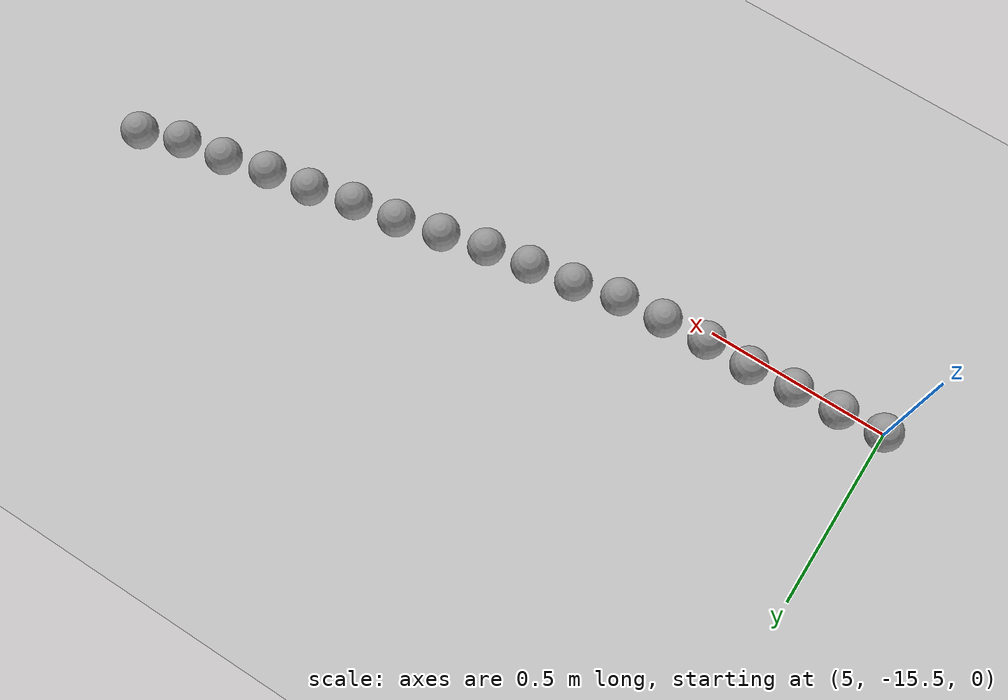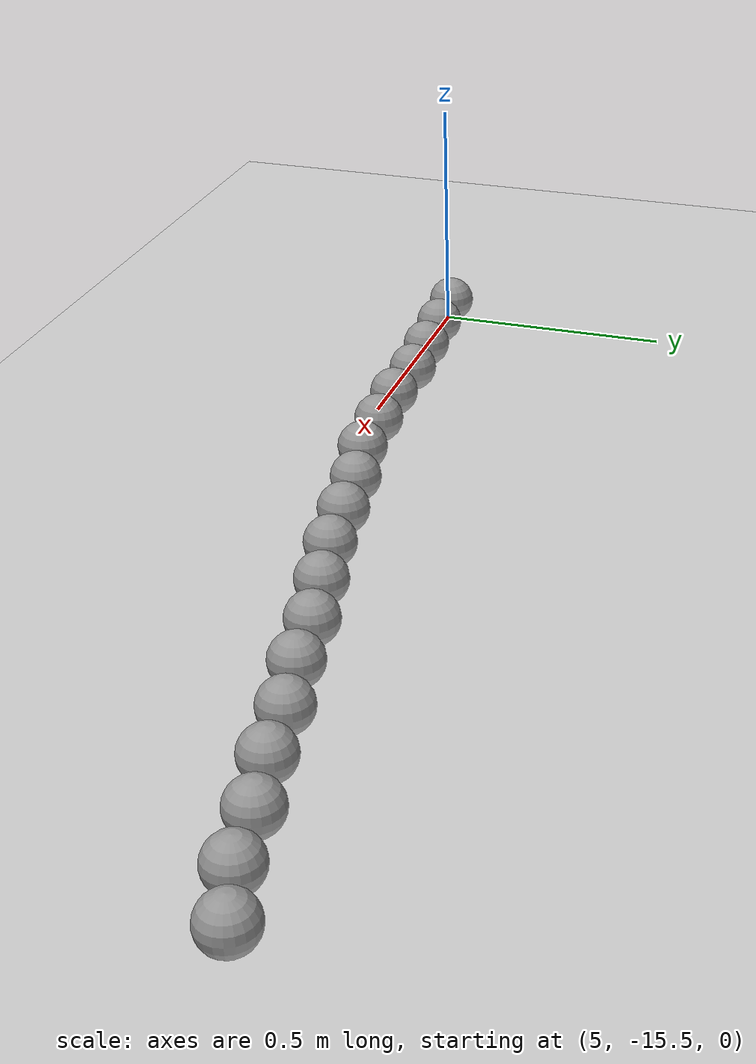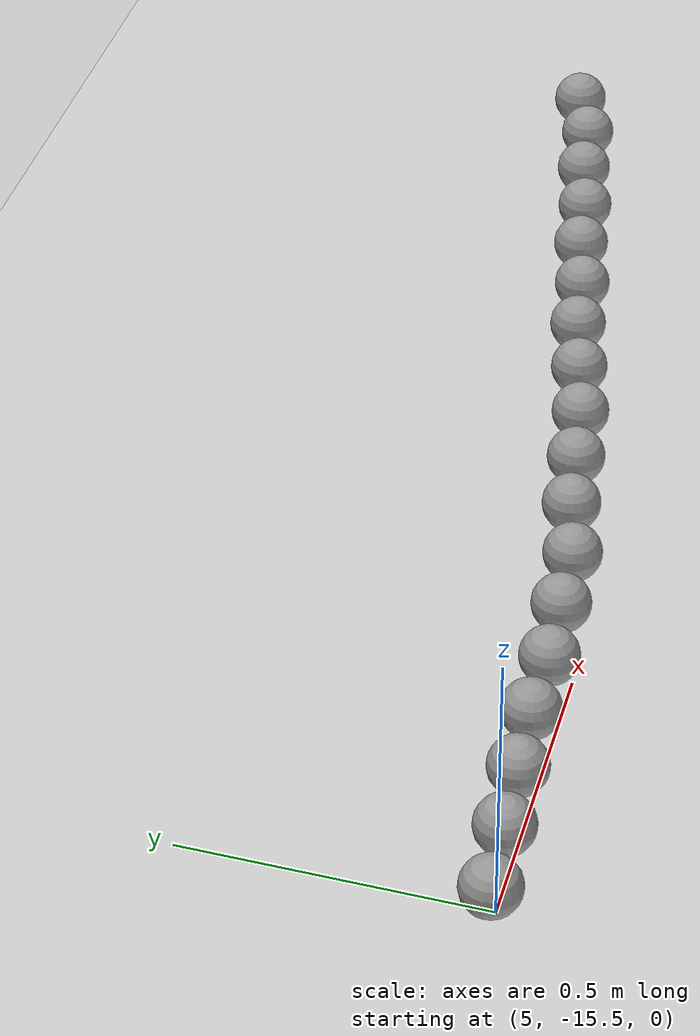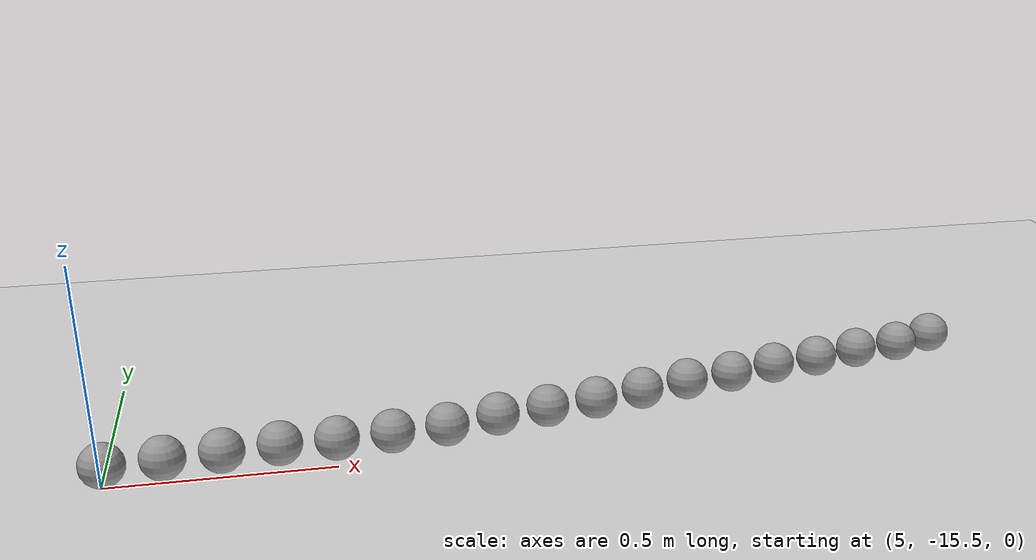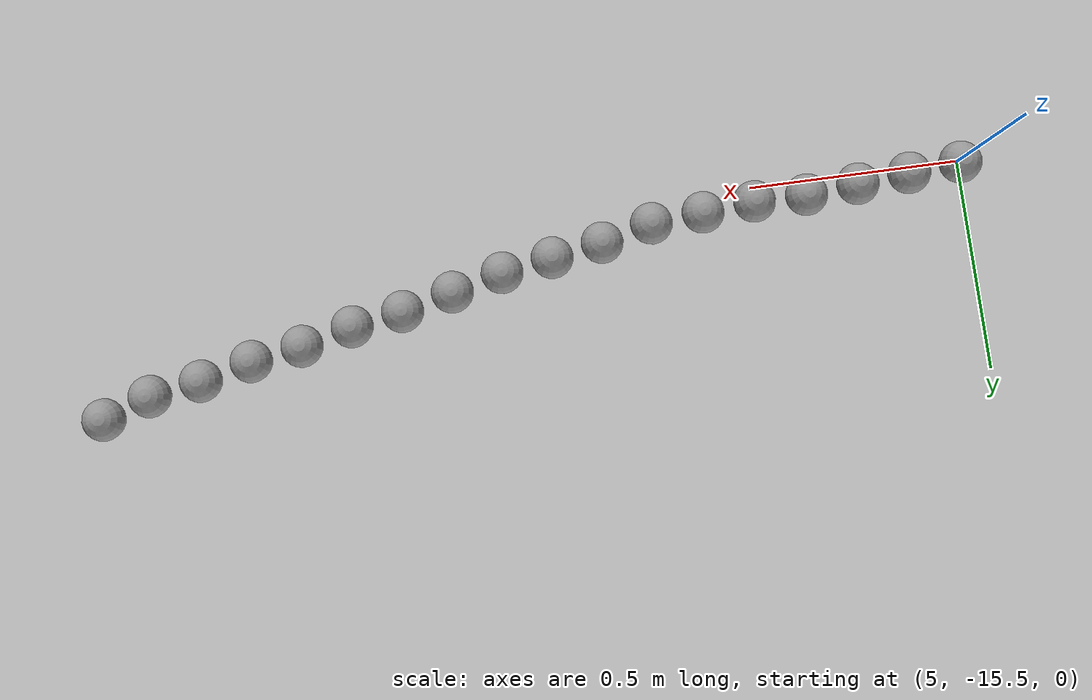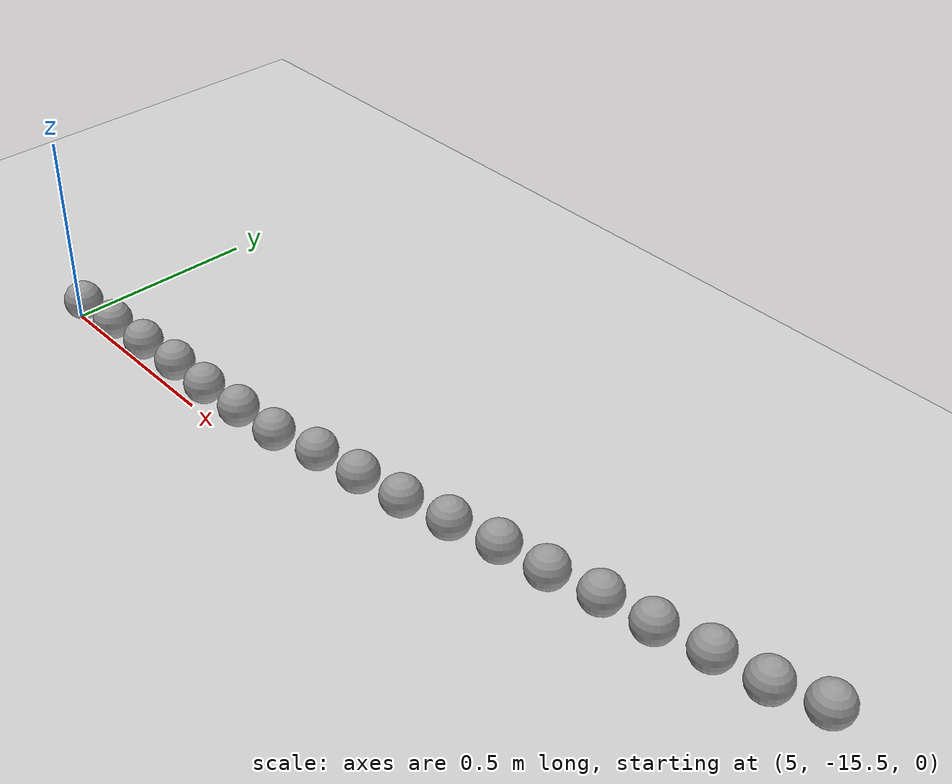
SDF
<sdf version="1.6">
 <world name="default">
  <model name="ground_plane">
   <static>1</static>
   <link name="link">
    <collision name="collision">
     <geometry><plane><normal>0 0 1</normal><size>100 100</size></plane></geometry>
     <surface><friction><ode><mu>100</mu><mu2>50</mu2></ode></friction></surface>
    </collision>
    <visual name="visual">
     <cast_shadows>0</cast_shadows>
     <geometry><plane><normal>0 0 1</normal><size>100 100</size></plane></geometry>
     <material>
      <script><uri>file://media/materials/scripts/gazebo.material</uri><name>Gazebo/Grey</name></script>
     </material>
    </visual>
   </link>
  </model>
  <model name="unit_sphere_0_539">
   <pose>7.071000 -15.150000 0.050000 0 -0 0</pose>
   <link name="link">
    <inertial>
     <mass>1</mass>
     <inertia><ixx>0.1</ixx><ixy>0</ixy><ixz>0</ixz><iyy>0.1</iyy><iyz>0</iyz><izz>0.1</izz></inertia>
    </inertial>
    <collision name="collision"><geometry><sphere><radius>0.050000</radius></sphere></geometry></collision>
    <visual name="visual">
     <geometry><sphere><radius>0.050000</radius></sphere></geometry>
     <material>
      <script><name>Gazebo/Grey</name><uri>file://media/materials/scripts/gazebo.material</uri></script>
     </material>
    </visual>
   </link>
  </model>
  <model name="unit_sphere_0_540">
   <pose>6.960000 -15.190000 0.050000 0 -0 0</pose>
   <link name="link">
    <inertial>
     <mass>1</mass>
     <inertia><ixx>0.1</ixx><ixy>0</ixy><ixz>0</ixz><iyy>0.1</iyy><iyz>0</iyz><izz>0.1</izz></inertia>
    </inertial>
    <collision name="collision"><geometry><sphere><radius>0.050000</radius></sphere></geometry></collision>
    <visual name="visual">
     <geometry><sphere><radius>0.050000</radius></sphere></geometry>
     <material>
      <script><name>Gazebo/Grey</name><uri>file://media/materials/scripts/gazebo.material</uri></script>
     </material>
    </visual>
   </link>
  </model>
  <model name="unit_sphere_0_541">
   <pose>6.839000 -15.210000 0.050000 0 -0 0</pose>
   <link name="link">
    <inertial>
     <mass>1</mass>
     <inertia><ixx>0.1</ixx><ixy>0</ixy><ixz>0</ixz><iyy>0.1</iyy><iyz>0</iyz><izz>0.1</izz></inertia>
    </inertial>
    <collision name="collision"><geometry><sphere><radius>0.050000</radius></sphere></geometry></collision>
    <visual name="visual">
     <geometry><sphere><radius>0.050000</radius></sphere></geometry>
     <material>
      <script><name>Gazebo/Grey</name><uri>file://media/materials/scripts/gazebo.material</uri></script>
     </material>
    </visual>
   </link>
  </model>
  <model name="unit_sphere_0_542">
   <pose>6.718000 -15.240000 0.050000 0 -0 0</pose>
   <link name="link">
    <inertial>
     <mass>1</mass>
     <inertia><ixx>0.1</ixx><ixy>0</ixy><ixz>0</ixz><iyy>0.1</iyy><iyz>0</iyz><izz>0.1</izz></inertia>
    </inertial>
    <collision name="collision"><geometry><sphere><radius>0.050000</radius></sphere></geometry></collision>
    <visual name="visual">
     <geometry><sphere><radius>0.050000</radius></sphere></geometry>
     <material>
      <script><name>Gazebo/Grey</name><uri>file://media/materials/scripts/gazebo.material</uri></script>
     </material>
    </visual>
   </link>
  </model>
  <model name="unit_sphere_0_543">
   <pose>6.597000 -15.260000 0.050000 0 -0 0</pose>
   <link name="link">
    <inertial>
     <mass>1</mass>
     <inertia><ixx>0.1</ixx><ixy>0</ixy><ixz>0</ixz><iyy>0.1</iyy><iyz>0</iyz><izz>0.1</izz></inertia>
    </inertial>
    <collision name="collision"><geometry><sphere><radius>0.050000</radius></sphere></geometry></collision>
    <visual name="visual">
     <geometry><sphere><radius>0.050000</radius></sphere></geometry>
     <material>
      <script><name>Gazebo/Grey</name><uri>file://media/materials/scripts/gazebo.material</uri></script>
     </material>
    </visual>
   </link>
  </model>
  <model name="unit_sphere_0_544">
   <pose>6.476000 -15.290000 0.050000 0 -0 0</pose>
   <link name="link">
    <inertial>
     <mass>1</mass>
     <inertia><ixx>0.1</ixx><ixy>0</ixy><ixz>0</ixz><iyy>0.1</iyy><iyz>0</iyz><izz>0.1</izz></inertia>
    </inertial>
    <collision name="collision"><geometry><sphere><radius>0.050000</radius></sphere></geometry></collision>
    <visual name="visual">
     <geometry><sphere><radius>0.050000</radius></sphere></geometry>
     <material>
      <script><name>Gazebo/Grey</name><uri>file://media/materials/scripts/gazebo.material</uri></script>
     </material>
    </visual>
   </link>
  </model>
  <model name="unit_sphere_0_545">
   <pose>6.355000 -15.310000 0.050000 0 -0 0</pose>
   <link name="link">
    <inertial>
     <mass>1</mass>
     <inertia><ixx>0.1</ixx><ixy>0</ixy><ixz>0</ixz><iyy>0.1</iyy><iyz>0</iyz><izz>0.1</izz></inertia>
    </inertial>
    <collision name="collision"><geometry><sphere><radius>0.050000</radius></sphere></geometry></collision>
    <visual name="visual">
     <geometry><sphere><radius>0.050000</radius></sphere></geometry>
     <material>
      <script><name>Gazebo/Grey</name><uri>file://media/materials/scripts/gazebo.material</uri></script>
     </material>
    </visual>
   </link>
  </model>
  <model name="unit_sphere_0_546">
   <pose>6.234000 -15.340000 0.050000 0 -0 0</pose>
   <link name="link">
    <inertial>
     <mass>1</mass>
     <inertia><ixx>0.1</ixx><ixy>0</ixy><ixz>0</ixz><iyy>0.1</iyy><iyz>0</iyz><izz>0.1</izz></inertia>
    </inertial>
    <collision name="collision"><geometry><sphere><radius>0.050000</radius></sphere></geometry></collision>
    <visual name="visual">
     <geometry><sphere><radius>0.050000</radius></sphere></geometry>
     <material>
      <script><name>Gazebo/Grey</name><uri>file://media/materials/scripts/gazebo.material</uri></script>
     </material>
    </visual>
   </link>
  </model>
  <model name="unit_sphere_0_547">
   <pose>6.113000 -15.370000 0.050000 0 -0 0</pose>
   <link name="link">
    <inertial>
     <mass>1</mass>
     <inertia><ixx>0.1</ixx><ixy>0</ixy><ixz>0</ixz><iyy>0.1</iyy><iyz>0</iyz><izz>0.1</izz></inertia>
    </inertial>
    <collision name="collision"><geometry><sphere><radius>0.050000</radius></sphere></geometry></collision>
    <visual name="visual">
     <geometry><sphere><radius>0.050000</radius></sphere></geometry>
     <material>
      <script><name>Gazebo/Grey</name><uri>file://media/materials/scripts/gazebo.material</uri></script>
     </material>
    </visual>
   </link>
  </model>
  <model name="unit_sphere_0_548">
   <pose>5.992000 -15.390000 0.050000 0 -0 0</pose>
   <link name="link">
    <inertial>
     <mass>1</mass>
     <inertia><ixx>0.1</ixx><ixy>0</ixy><ixz>0</ixz><iyy>0.1</iyy><iyz>0</iyz><izz>0.1</izz></inertia>
    </inertial>
    <collision name="collision"><geometry><sphere><radius>0.050000</radius></sphere></geometry></collision>
    <visual name="visual">
     <geometry><sphere><radius>0.050000</radius></sphere></geometry>
     <material>
      <script><name>Gazebo/Grey</name><uri>file://media/materials/scripts/gazebo.material</uri></script>
     </material>
    </visual>
   </link>
  </model>
  <model name="unit_sphere_0_549">
   <pose>5.871000 -15.410000 0.050000 0 -0 0</pose>
   <link name="link">
    <inertial>
     <mass>1</mass>
     <inertia><ixx>0.1</ixx><ixy>0</ixy><ixz>0</ixz><iyy>0.1</iyy><iyz>0</iyz><izz>0.1</izz></inertia>
    </inertial>
    <collision name="collision"><geometry><sphere><radius>0.050000</radius></sphere></geometry></collision>
    <visual name="visual">
     <geometry><sphere><radius>0.050000</radius></sphere></geometry>
     <material>
      <script><name>Gazebo/Grey</name><uri>file://media/materials/scripts/gazebo.material</uri></script>
     </material>
    </visual>
   </link>
  </model>
  <model name="unit_sphere_0_550">
   <pose>5.750000 -15.440000 0.050000 0 -0 0</pose>
   <link name="link">
    <inertial>
     <mass>1</mass>
     <inertia><ixx>0.1</ixx><ixy>0</ixy><ixz>0</ixz><iyy>0.1</iyy><iyz>0</iyz><izz>0.1</izz></inertia>
    </inertial>
    <collision name="collision"><geometry><sphere><radius>0.050000</radius></sphere></geometry></collision>
    <visual name="visual">
     <geometry><sphere><radius>0.050000</radius></sphere></geometry>
     <material>
      <script><name>Gazebo/Grey</name><uri>file://media/materials/scripts/gazebo.material</uri></script>
     </material>
    </visual>
   </link>
  </model>
  <model name="unit_sphere_0_551">
   <pose>5.626000 -15.450000 0.050000 0 -0 0</pose>
   <link name="link">
    <inertial>
     <mass>1</mass>
     <inertia><ixx>0.1</ixx><ixy>0</ixy><ixz>0</ixz><iyy>0.1</iyy><iyz>0</iyz><izz>0.1</izz></inertia>
    </inertial>
    <collision name="collision"><geometry><sphere><radius>0.050000</radius></sphere></geometry></collision>
    <visual name="visual">
     <geometry><sphere><radius>0.050000</radius></sphere></geometry>
     <material>
      <script><name>Gazebo/Grey</name><uri>file://media/materials/scripts/gazebo.material</uri></script>
     </material>
    </visual>
   </link>
  </model>
  <model name="unit_sphere_0_552">
   <pose>5.502000 -15.460000 0.050000 0 -0 0</pose>
   <link name="link">
    <inertial>
     <mass>1</mass>
     <inertia><ixx>0.1</ixx><ixy>0</ixy><ixz>0</ixz><iyy>0.1</iyy><iyz>0</iyz><izz>0.1</izz></inertia>
    </inertial>
    <collision name="collision"><geometry><sphere><radius>0.050000</radius></sphere></geometry></collision>
    <visual name="visual">
     <geometry><sphere><radius>0.050000</radius></sphere></geometry>
     <material>
      <script><name>Gazebo/Grey</name><uri>file://media/materials/scripts/gazebo.material</uri></script>
     </material>
    </visual>
   </link>
  </model>
  <model name="unit_sphere_0_553">
   <pose>5.378000 -15.460000 0.050000 0 -0 0</pose>
   <link name="link">
    <inertial>
     <mass>1</mass>
     <inertia><ixx>0.1</ixx><ixy>0</ixy><ixz>0</ixz><iyy>0.1</iyy><iyz>0</iyz><izz>0.1</izz></inertia>
    </inertial>
    <collision name="collision"><geometry><sphere><radius>0.050000</radius></sphere></geometry></collision>
    <visual name="visual">
     <geometry><sphere><radius>0.050000</radius></sphere></geometry>
     <material>
      <script><name>Gazebo/Grey</name><uri>file://media/materials/scripts/gazebo.material</uri></script>
     </material>
    </visual>
   </link>
  </model>
  <model name="unit_sphere_0_554">
   <pose>5.254000 -15.470000 0.050000 0 -0 0</pose>
   <link name="link">
    <inertial>
     <mass>1</mass>
     <inertia><ixx>0.1</ixx><ixy>0</ixy><ixz>0</ixz><iyy>0.1</iyy><iyz>0</iyz><izz>0.1</izz></inertia>
    </inertial>
    <collision name="collision"><geometry><sphere><radius>0.050000</radius></sphere></geometry></collision>
    <visual name="visual">
     <geometry><sphere><radius>0.050000</radius></sphere></geometry>
     <material>
      <script><name>Gazebo/Grey</name><uri>file://media/materials/scripts/gazebo.material</uri></script>
     </material>
    </visual>
   </link>
  </model>
  <model name="unit_sphere_0_555">
   <pose>5.130000 -15.480000 0.050000 0 -0 0</pose>
   <link name="link">
    <inertial>
     <mass>1</mass>
     <inertia><ixx>0.1</ixx><ixy>0</ixy><ixz>0</ixz><iyy>0.1</iyy><iyz>0</iyz><izz>0.1</izz></inertia>
    </inertial>
    <collision name="collision"><geometry><sphere><radius>0.050000</radius></sphere></geometry></collision>
    <visual name="visual">
     <geometry><sphere><radius>0.050000</radius></sphere></geometry>
     <material>
      <script><name>Gazebo/Grey</name><uri>file://media/materials/scripts/gazebo.material</uri></script>
     </material>
    </visual>
   </link>
  </model>
  <model name="unit_sphere_0_556">
   <pose>5.006000 -15.490000 0.050000 0 -0 0</pose>
   <link name="link">
    <inertial>
     <mass>1</mass>
     <inertia><ixx>0.1</ixx><ixy>0</ixy><ixz>0</ixz><iyy>0.1</iyy><iyz>0</iyz><izz>0.1</izz></inertia>
    </inertial>
    <collision name="collision"><geometry><sphere><radius>0.050000</radius></sphere></geometry></collision>
    <visual name="visual">
     <geometry><sphere><radius>0.050000</radius></sphere></geometry>
     <material>
      <script><name>Gazebo/Grey</name><uri>file://media/materials/scripts/gazebo.material</uri></script>
     </material>
    </visual>
   </link>
  </model>
 </world>
</sdf>
